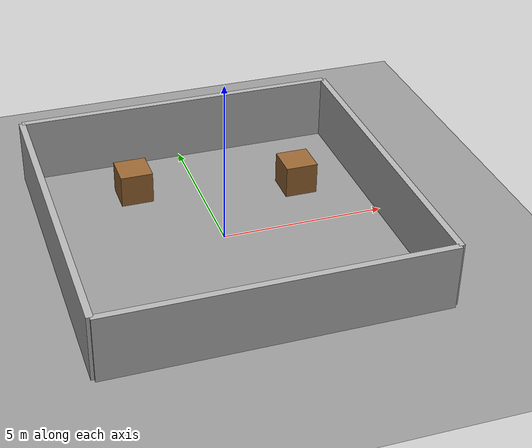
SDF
<?xml version="1.0"?>
<sdf version="1.10">
  <world name="warehouse">

    <plugin filename="gz-sim-physics-system"
            name="gz::sim::systems::Physics"/>
    <plugin filename="gz-sim-scene-broadcaster-system"
            name="gz::sim::systems::SceneBroadcaster"/>
    <plugin filename="gz-sim-user-commands-system"
            name="gz::sim::systems::UserCommands"/>
    <plugin filename="gz-sim-sensors-system"
            name="gz::sim::systems::Sensors">
      <render_engine>ogre2</render_engine>
    </plugin>
    <plugin filename="gz-sim-imu-system"
        name="gz::sim::systems::Imu"/>

    <light name="sun" type="directional">
      <cast_shadows>true</cast_shadows>
      <direction>-0.5 0.1 -0.9</direction>
      <diffuse>0.9 0.9 0.9 1</diffuse>
    </light>

    <model name="ground_plane">
      <static>true</static>
      <link name="link">
        <collision name="collision">
          <geometry><plane><normal>0 0 1</normal></plane></geometry>
          <surface>
            <friction><ode><mu>0.8</mu><mu2>0.8</mu2></ode></friction>
          </surface>
        </collision>
        <visual name="visual">
          <geometry><plane><normal>0 0 1</normal><size>20 20</size></plane></geometry>
          <material>
            <ambient>0.6 0.6 0.6 1</ambient>
            <diffuse>0.6 0.6 0.6 1</diffuse>
          </material>
        </visual>
      </link>
    </model>

<!-- Стена северная -->
<model name="wall_north">
  <static>true</static>
  <pose>0 5 1 0 0 0</pose>
  <link name="link">
    <collision name="collision">
      <geometry><box><size>10 0.2 2</size></box></geometry>
    </collision>
    <visual name="visual">
      <geometry><box><size>10 0.2 2</size></box></geometry>
      <material><ambient>0.7 0.7 0.7 1</ambient><diffuse>0.7 0.7 0.7 1</diffuse></material>
    </visual>
  </link>
</model>

<!-- Стена южная -->
<model name="wall_south">
  <static>true</static>
  <pose>0 -5 1 0 0 0</pose>
  <link name="link">
    <collision name="collision">
      <geometry><box><size>10 0.2 2</size></box></geometry>
    </collision>
    <visual name="visual">
      <geometry><box><size>10 0.2 2</size></box></geometry>
      <material><ambient>0.7 0.7 0.7 1</ambient><diffuse>0.7 0.7 0.7 1</diffuse></material>
    </visual>
  </link>
</model>

<!-- Стена западная -->
<model name="wall_west">
  <static>true</static>
  <pose>-5 0 1 0 0 0</pose>
  <link name="link">
    <collision name="collision">
      <geometry><box><size>0.2 10 2</size></box></geometry>
    </collision>
    <visual name="visual">
      <geometry><box><size>0.2 10 2</size></box></geometry>
      <material><ambient>0.7 0.7 0.7 1</ambient><diffuse>0.7 0.7 0.7 1</diffuse></material>
    </visual>
  </link>
</model>

<!-- Стена восточная -->
<model name="wall_east">
  <static>true</static>
  <pose>5 0 1 0 0 0</pose>
  <link name="link">
    <collision name="collision">
      <geometry><box><size>0.2 10 2</size></box></geometry>
    </collision>
    <visual name="visual">
      <geometry><box><size>0.2 10 2</size></box></geometry>
      <material><ambient>0.7 0.7 0.7 1</ambient><diffuse>0.7 0.7 0.7 1</diffuse></material>
    </visual>
  </link>
</model>

<!-- Ящики -->
<model name="box1">
  <static>true</static>
  <pose>3 2 0.5 0 0 0</pose>
  <link name="link">
    <collision name="collision">
      <geometry><box><size>1 1 1</size></box></geometry>
    </collision>
    <visual name="visual">
      <geometry><box><size>1 1 1</size></box></geometry>
      <material><ambient>0.6 0.4 0.2 1</ambient><diffuse>0.6 0.4 0.2 1</diffuse></material>
    </visual>
  </link>
</model>

<model name="box2">
  <static>true</static>
  <pose>-2 3 0.5 0 0 0</pose>
  <link name="link">
    <collision name="collision">
      <geometry><box><size>1 1 1</size></box></geometry>
    </collision>
    <visual name="visual">
      <geometry><box><size>1 1 1</size></box></geometry>
      <material><ambient>0.6 0.4 0.2 1</ambient><diffuse>0.6 0.4 0.2 1</diffuse></material>
    </visual>
  </link>
</model>

  </world>
</sdf>
